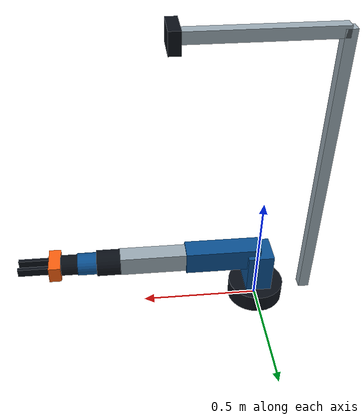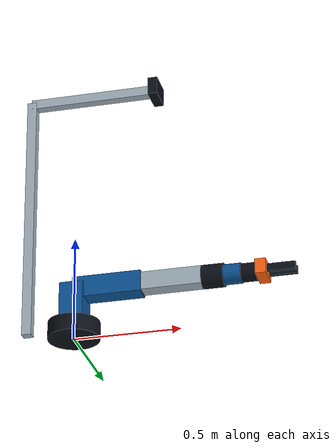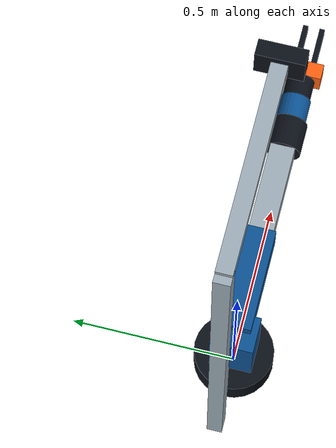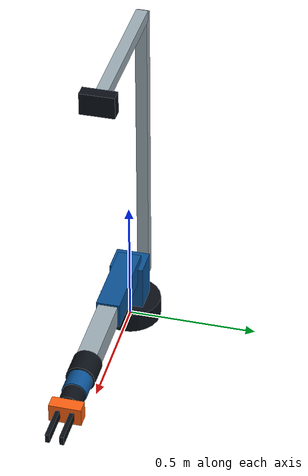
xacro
<?xml version="1.0"?>
<robot xmlns:xacro="http://www.ros.org/wiki/xacro" name="vgm_arm">
  <xacro:arg name="prefix" default=""/>
  <xacro:arg name="use_gazebo" default="false"/>

  <xacro:include filename="$(find vgm_description)/urdf/materials.xacro"/>
  <xacro:include filename="$(find vgm_description)/urdf/inertials.xacro"/>
  <xacro:include filename="$(find vgm_description)/urdf/vgm_arm.ros2_control.xacro"/>

  <xacro:property name="pi" value="3.141592653589793"/>
  <xacro:property name="arm_prefix" value="$(arg prefix)"/>

  <!-- Base and shoulder: primitive geometry keeps the model portable and CI-friendly. -->
  <link name="${arm_prefix}base_link">
    <visual>
      <origin xyz="0 0 0.04" rpy="0 0 0"/>
      <geometry><cylinder radius="0.12" length="0.08"/></geometry>
      <material name="vgm_dark"/>
    </visual>
    <collision>
      <origin xyz="0 0 0.04" rpy="0 0 0"/>
      <geometry><cylinder radius="0.12" length="0.08"/></geometry>
    </collision>
    <xacro:cylinder_inertial mass="5.0" radius="0.12" length="0.08" origin_xyz="0 0 0.04"/>
  </link>

  <link name="${arm_prefix}shoulder_link">
    <visual>
      <origin xyz="0 0 0.09" rpy="0 0 0"/>
      <geometry><box size="0.11 0.13 0.18"/></geometry>
      <material name="vgm_blue"/>
    </visual>
    <collision>
      <origin xyz="0 0 0.09" rpy="0 0 0"/>
      <geometry><box size="0.11 0.13 0.18"/></geometry>
    </collision>
    <xacro:box_inertial mass="3.2" x="0.11" y="0.13" z="0.18" origin_xyz="0 0 0.09"/>
  </link>
  <joint name="${arm_prefix}joint_1" type="revolute">
    <parent link="${arm_prefix}base_link"/>
    <child link="${arm_prefix}shoulder_link"/>
    <origin xyz="0 0 0.08" rpy="0 0 0"/>
    <axis xyz="0 0 1"/>
    <limit lower="${-pi}" upper="${pi}" effort="90" velocity="1.5"/>
    <dynamics damping="0.12" friction="0.04"/>
  </joint>

  <link name="${arm_prefix}upper_arm_link">
    <visual>
      <origin xyz="0.16 0 0" rpy="0 0 0"/>
      <geometry><box size="0.32 0.09 0.10"/></geometry>
      <material name="vgm_blue"/>
    </visual>
    <collision>
      <origin xyz="0.16 0 0" rpy="0 0 0"/>
      <geometry><box size="0.32 0.09 0.10"/></geometry>
    </collision>
    <xacro:box_inertial mass="3.0" x="0.32" y="0.09" z="0.10" origin_xyz="0.16 0 0"/>
  </link>
  <joint name="${arm_prefix}joint_2" type="revolute">
    <parent link="${arm_prefix}shoulder_link"/>
    <child link="${arm_prefix}upper_arm_link"/>
    <origin xyz="0 0 0.16" rpy="0 0 0"/>
    <axis xyz="0 1 0"/>
    <limit lower="-2.20" upper="2.20" effort="90" velocity="1.4"/>
    <dynamics damping="0.12" friction="0.04"/>
  </joint>

  <link name="${arm_prefix}forearm_link">
    <visual>
      <origin xyz="0.14 0 0" rpy="0 0 0"/>
      <geometry><box size="0.28 0.075 0.085"/></geometry>
      <material name="vgm_silver"/>
    </visual>
    <collision>
      <origin xyz="0.14 0 0" rpy="0 0 0"/>
      <geometry><box size="0.28 0.075 0.085"/></geometry>
    </collision>
    <xacro:box_inertial mass="2.1" x="0.28" y="0.075" z="0.085" origin_xyz="0.14 0 0"/>
  </link>
  <joint name="${arm_prefix}joint_3" type="revolute">
    <parent link="${arm_prefix}upper_arm_link"/>
    <child link="${arm_prefix}forearm_link"/>
    <origin xyz="0.32 0 0" rpy="0 0 0"/>
    <axis xyz="0 1 0"/>
    <limit lower="-2.60" upper="2.60" effort="70" velocity="1.6"/>
    <dynamics damping="0.10" friction="0.03"/>
  </joint>

  <link name="${arm_prefix}wrist_1_link">
    <visual>
      <origin xyz="0.05 0 0" rpy="0 1.57079632679 0"/>
      <geometry><cylinder radius="0.055" length="0.10"/></geometry>
      <material name="vgm_dark"/>
    </visual>
    <collision>
      <origin xyz="0.05 0 0" rpy="0 1.57079632679 0"/>
      <geometry><cylinder radius="0.055" length="0.10"/></geometry>
    </collision>
    <xacro:cylinder_inertial mass="0.85" radius="0.055" length="0.10" origin_xyz="0.05 0 0" origin_rpy="0 1.57079632679 0"/>
  </link>
  <joint name="${arm_prefix}joint_4" type="revolute">
    <parent link="${arm_prefix}forearm_link"/>
    <child link="${arm_prefix}wrist_1_link"/>
    <origin xyz="0.28 0 0" rpy="0 0 0"/>
    <axis xyz="1 0 0"/>
    <limit lower="${-pi}" upper="${pi}" effort="35" velocity="2.0"/>
    <dynamics damping="0.08" friction="0.02"/>
  </joint>

  <link name="${arm_prefix}wrist_2_link">
    <visual>
      <origin xyz="0.04 0 0" rpy="0 1.57079632679 0"/>
      <geometry><cylinder radius="0.047" length="0.08"/></geometry>
      <material name="vgm_blue"/>
    </visual>
    <collision>
      <origin xyz="0.04 0 0" rpy="0 1.57079632679 0"/>
      <geometry><cylinder radius="0.047" length="0.08"/></geometry>
    </collision>
    <xacro:cylinder_inertial mass="0.60" radius="0.047" length="0.08" origin_xyz="0.04 0 0" origin_rpy="0 1.57079632679 0"/>
  </link>
  <joint name="${arm_prefix}joint_5" type="revolute">
    <parent link="${arm_prefix}wrist_1_link"/>
    <child link="${arm_prefix}wrist_2_link"/>
    <origin xyz="0.10 0 0" rpy="0 0 0"/>
    <axis xyz="0 1 0"/>
    <limit lower="-2.20" upper="2.20" effort="30" velocity="2.0"/>
    <dynamics damping="0.08" friction="0.02"/>
  </joint>

  <link name="${arm_prefix}wrist_3_link">
    <visual>
      <origin xyz="0.035 0 0" rpy="0 1.57079632679 0"/>
      <geometry><cylinder radius="0.043" length="0.07"/></geometry>
      <material name="vgm_dark"/>
    </visual>
    <collision>
      <origin xyz="0.035 0 0" rpy="0 1.57079632679 0"/>
      <geometry><cylinder radius="0.043" length="0.07"/></geometry>
    </collision>
    <xacro:cylinder_inertial mass="0.42" radius="0.043" length="0.07" origin_xyz="0.035 0 0" origin_rpy="0 1.57079632679 0"/>
  </link>
  <joint name="${arm_prefix}joint_6" type="revolute">
    <parent link="${arm_prefix}wrist_2_link"/>
    <child link="${arm_prefix}wrist_3_link"/>
    <origin xyz="0.08 0 0" rpy="0 0 0"/>
    <axis xyz="1 0 0"/>
    <limit lower="${-pi}" upper="${pi}" effort="20" velocity="2.5"/>
    <dynamics damping="0.06" friction="0.02"/>
  </joint>

  <link name="${arm_prefix}tool0"/>
  <joint name="${arm_prefix}tool0_joint" type="fixed">
    <parent link="${arm_prefix}wrist_3_link"/>
    <child link="${arm_prefix}tool0"/>
    <origin xyz="0.07 0 0" rpy="0 0 0"/>
  </joint>

  <link name="${arm_prefix}gripper_base_link">
    <visual>
      <origin xyz="0.025 0 0" rpy="0 0 0"/>
      <geometry><box size="0.05 0.12 0.07"/></geometry>
      <material name="vgm_orange"/>
    </visual>
    <collision>
      <origin xyz="0.025 0 0" rpy="0 0 0"/>
      <geometry><box size="0.05 0.12 0.07"/></geometry>
    </collision>
    <xacro:box_inertial mass="0.40" x="0.05" y="0.12" z="0.07" origin_xyz="0.025 0 0"/>
  </link>
  <joint name="${arm_prefix}gripper_mount_joint" type="fixed">
    <parent link="${arm_prefix}tool0"/>
    <child link="${arm_prefix}gripper_base_link"/>
    <origin xyz="0 0 0" rpy="0 0 0"/>
  </joint>

  <xacro:macro name="finger_link" params="name y_sign">
    <link name="${arm_prefix}${name}">
      <visual>
        <origin xyz="0.07 0 0" rpy="0 0 0"/>
        <geometry><box size="0.14 0.016 0.035"/></geometry>
        <material name="vgm_dark"/>
      </visual>
      <collision>
        <origin xyz="0.07 0 0" rpy="0 0 0"/>
        <geometry><box size="0.14 0.016 0.035"/></geometry>
      </collision>
      <xacro:box_inertial mass="0.09" x="0.14" y="0.016" z="0.035" origin_xyz="0.07 0 0"/>
    </link>
  </xacro:macro>
  <xacro:finger_link name="left_finger_link" y_sign="1"/>
  <xacro:finger_link name="right_finger_link" y_sign="-1"/>

  <joint name="${arm_prefix}left_finger_joint" type="prismatic">
    <parent link="${arm_prefix}gripper_base_link"/>
    <child link="${arm_prefix}left_finger_link"/>
    <origin xyz="0.04 0.026 0" rpy="0 0 0"/>
    <axis xyz="0 1 0"/>
    <limit lower="0.0" upper="0.04" effort="40" velocity="0.05"/>
    <dynamics damping="1.0" friction="0.2"/>
  </joint>
  <joint name="${arm_prefix}right_finger_joint" type="prismatic">
    <parent link="${arm_prefix}gripper_base_link"/>
    <child link="${arm_prefix}right_finger_link"/>
    <origin xyz="0.04 -0.026 0" rpy="0 0 0"/>
    <axis xyz="0 -1 0"/>
    <limit lower="0.0" upper="0.04" effort="40" velocity="0.05"/>
    <mimic joint="${arm_prefix}left_finger_joint" multiplier="1.0" offset="0.0"/>
    <dynamics damping="1.0" friction="0.2"/>
  </joint>

  <link name="${arm_prefix}tcp_link"/>
  <joint name="${arm_prefix}tcp_joint" type="fixed">
    <parent link="${arm_prefix}gripper_base_link"/>
    <child link="${arm_prefix}tcp_link"/>
    <origin xyz="0.17 0 0" rpy="0 0 0"/>
  </joint>

  <!-- Eye-to-hand RGB-D camera: link X points down; optical frames follow REP-103. -->
  <link name="${arm_prefix}camera_mast_link">
    <visual>
      <origin xyz="0 0 0.60" rpy="0 0 0"/>
      <geometry><box size="0.045 0.045 1.20"/></geometry>
      <material name="vgm_silver"/>
    </visual>
    <collision>
      <origin xyz="0 0 0.60" rpy="0 0 0"/>
      <geometry><box size="0.045 0.045 1.20"/></geometry>
    </collision>
    <xacro:box_inertial mass="1.4" x="0.045" y="0.045" z="1.20" origin_xyz="0 0 0.60"/>
  </link>
  <joint name="${arm_prefix}camera_mast_joint" type="fixed">
    <parent link="${arm_prefix}base_link"/>
    <child link="${arm_prefix}camera_mast_link"/>
    <origin xyz="-0.22 0 0.04" rpy="0 0 0"/>
  </joint>

  <link name="${arm_prefix}camera_boom_link">
    <visual>
      <origin xyz="0.30 0 0" rpy="0 0 0"/>
      <geometry><box size="0.60 0.045 0.045"/></geometry>
      <material name="vgm_silver"/>
    </visual>
    <collision>
      <origin xyz="0.30 0 0" rpy="0 0 0"/>
      <geometry><box size="0.60 0.045 0.045"/></geometry>
    </collision>
    <xacro:box_inertial mass="0.65" x="0.60" y="0.045" z="0.045" origin_xyz="0.30 0 0"/>
  </link>
  <joint name="${arm_prefix}camera_boom_joint" type="fixed">
    <parent link="${arm_prefix}camera_mast_link"/>
    <child link="${arm_prefix}camera_boom_link"/>
    <origin xyz="0 0 1.19" rpy="0 0 0"/>
  </joint>

  <link name="${arm_prefix}camera_link">
    <visual>
      <geometry><box size="0.085 0.13 0.045"/></geometry>
      <material name="vgm_dark"/>
    </visual>
    <collision>
      <geometry><box size="0.085 0.13 0.045"/></geometry>
    </collision>
    <xacro:box_inertial mass="0.28" x="0.085" y="0.13" z="0.045"/>
  </link>
  <joint name="${arm_prefix}camera_mount_joint" type="fixed">
    <parent link="${arm_prefix}camera_boom_link"/>
    <child link="${arm_prefix}camera_link"/>
    <origin xyz="0.60 0 0" rpy="0 1.57079632679 0"/>
  </joint>

  <link name="${arm_prefix}camera_color_frame"/>
  <joint name="${arm_prefix}camera_color_joint" type="fixed">
    <parent link="${arm_prefix}camera_link"/>
    <child link="${arm_prefix}camera_color_frame"/>
    <origin xyz="0.025 -0.025 0" rpy="0 0 0"/>
  </joint>
  <link name="${arm_prefix}camera_color_optical_frame"/>
  <joint name="${arm_prefix}camera_color_optical_joint" type="fixed">
    <parent link="${arm_prefix}camera_color_frame"/>
    <child link="${arm_prefix}camera_color_optical_frame"/>
    <origin xyz="0 0 0" rpy="-1.57079632679 0 -1.57079632679"/>
  </joint>
  <link name="${arm_prefix}camera_depth_frame"/>
  <joint name="${arm_prefix}camera_depth_joint" type="fixed">
    <parent link="${arm_prefix}camera_link"/>
    <child link="${arm_prefix}camera_depth_frame"/>
    <origin xyz="0.025 0.025 0" rpy="0 0 0"/>
  </joint>
  <link name="${arm_prefix}camera_depth_optical_frame"/>
  <joint name="${arm_prefix}camera_depth_optical_joint" type="fixed">
    <parent link="${arm_prefix}camera_depth_frame"/>
    <child link="${arm_prefix}camera_depth_optical_frame"/>
    <origin xyz="0 0 0" rpy="-1.57079632679 0 -1.57079632679"/>
  </joint>

  <gazebo reference="${arm_prefix}camera_link">
    <sensor name="rgbd_camera" type="rgbd_camera">
      <always_on>true</always_on>
      <update_rate>30</update_rate>
      <topic>/camera</topic>
      <gz_frame_id>${arm_prefix}camera_depth_optical_frame</gz_frame_id>
      <camera>
        <horizontal_fov>1.0472</horizontal_fov>
        <image>
          <width>640</width>
          <height>480</height>
          <format>R8G8B8</format>
        </image>
        <clip>
          <near>0.15</near>
          <far>3.0</far>
        </clip>
        <depth_camera>
          <clip>
            <near>0.15</near>
            <far>3.0</far>
          </clip>
        </depth_camera>
      </camera>
    </sensor>
  </gazebo>

  <xacro:vgm_ros2_control prefix="${arm_prefix}" use_gazebo="$(arg use_gazebo)"/>
</robot>

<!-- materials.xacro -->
<robot xmlns:xacro="http://www.ros.org/wiki/xacro">
  <material name="vgm_blue">
    <color rgba="0.04 0.32 0.58 1.0"/>
  </material>
  <material name="vgm_dark">
    <color rgba="0.04 0.06 0.09 1.0"/>
  </material>
  <material name="vgm_silver">
    <color rgba="0.62 0.68 0.72 1.0"/>
  </material>
  <material name="vgm_orange">
    <color rgba="1.0 0.38 0.06 1.0"/>
  </material>
</robot>

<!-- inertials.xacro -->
<robot xmlns:xacro="http://www.ros.org/wiki/xacro">
  <xacro:macro name="box_inertial" params="mass x y z origin_xyz:='0 0 0'">
    <inertial>
      <origin xyz="${origin_xyz}" rpy="0 0 0"/>
      <mass value="${mass}"/>
      <inertia
        ixx="${mass * (y * y + z * z) / 12.0}" ixy="0" ixz="0"
        iyy="${mass * (x * x + z * z) / 12.0}" iyz="0"
        izz="${mass * (x * x + y * y) / 12.0}"/>
    </inertial>
  </xacro:macro>

  <xacro:macro name="cylinder_inertial" params="mass radius length origin_xyz:='0 0 0' origin_rpy:='0 0 0'">
    <inertial>
      <origin xyz="${origin_xyz}" rpy="${origin_rpy}"/>
      <mass value="${mass}"/>
      <inertia
        ixx="${mass * (3.0 * radius * radius + length * length) / 12.0}" ixy="0" ixz="0"
        iyy="${mass * (3.0 * radius * radius + length * length) / 12.0}" iyz="0"
        izz="${mass * radius * radius / 2.0}"/>
    </inertial>
  </xacro:macro>
</robot>
